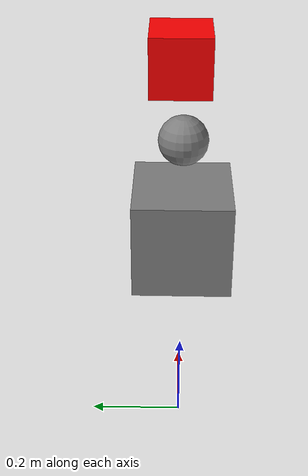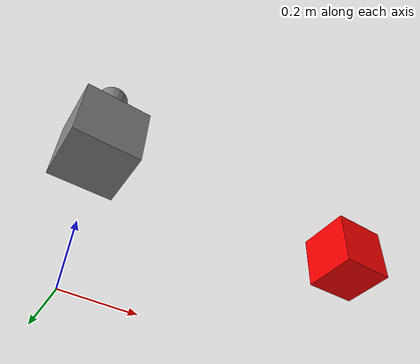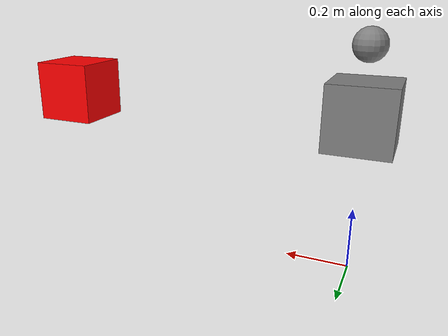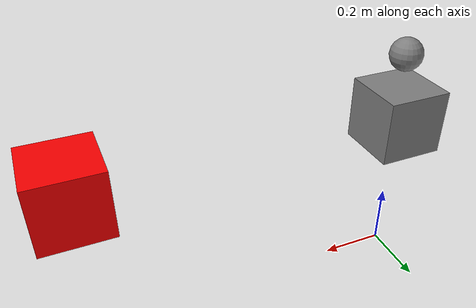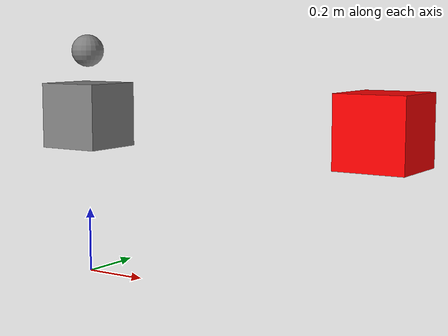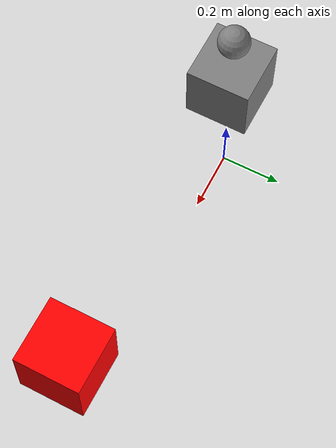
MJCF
<mujoco model="discardvisual">
    <compiler discardvisual="true"/>
    <worldbody>
        <body name="first" pos="0 0 0.5">
            <joint type="hinge"/>
            <geom type="box" size="0.1 0.1 0.1" mass="0.3"/>
            <geom type="sphere" size="0.05" pos="0 0 0.2" mass="0.3"/>
        </body>
        <body name="second" pos="1 0 0.5">
            <joint type="hinge"/>
            <geom name="vis2" type="box" size="0.1 0.1 0.1" contype="0" conaffinity="0" rgba="1 0 0 1"/>
            <geom name="col2" type="box" size="0.1 0.1 0.1"/>
        </body>
    </worldbody>
</mujoco>
